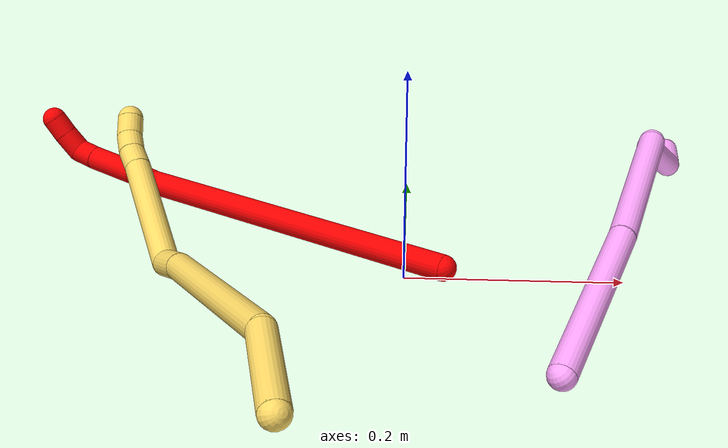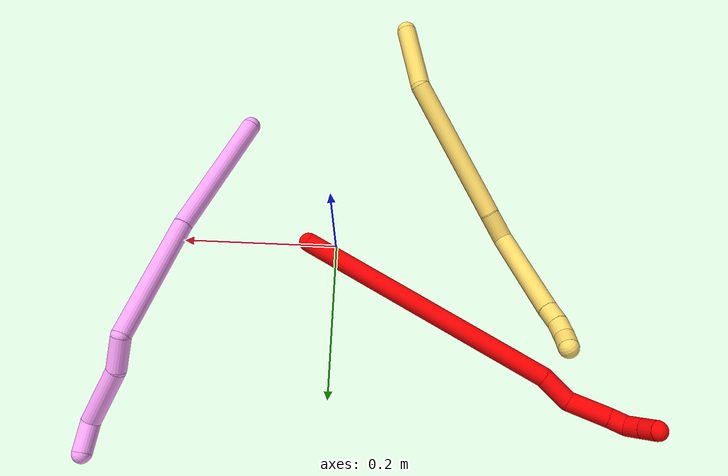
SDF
<sdf version="1.7">
 <world name="default">
  <model name="photoneo_s_sensor">
   <static>1</static>
   <pose>0 0 2 1.57079 1.57079 3.14159</pose>
   <link name="link">
    <inertial><mass>0.1</mass></inertial>
    <sensor name="sensor" type="depth">
     <update_rate>30</update_rate>
     <camera>
      <horizontal_fov>1.22</horizontal_fov>
      <image><width>1920</width><height>1200</height><format>B8G8R8</format></image>
      <clip><near>0.1</near><far>4</far></clip>
      <depth_camera><output>points</output></depth_camera>
     </camera>
     <plugin name="camera_plugin" filename="libgazebo_ros_depth_camera.so">
      <baseline>0.2</baseline>
      <alwaysOn>1</alwaysOn>
      <updateRate>0.0</updateRate>
      <cameraName>camera_ir</cameraName>
      <imageTopicName>/camera/color/image_raw</imageTopicName>
      <cameraInfoTopicName>/camera/color/camera_info</cameraInfoTopicName>
      <depthImageTopicName>/camera/depth/image_raw</depthImageTopicName>
      <depthImageCameraInfoTopicName>/camera/depth/camera_info</depthImageCameraInfoTopicName>
      <pointCloudTopicName>/camera/depth/points</pointCloudTopicName>
      <frameName>fr_optical</frameName>
      <pointCloudCutoff>0.1</pointCloudCutoff>
      <pointCloudCutoffMax>2.0</pointCloudCutoffMax>
      <distortionK1>0</distortionK1>
      <distortionK2>0</distortionK2>
      <distortionK3>0</distortionK3>
      <distortionT1>0</distortionT1>
      <distortionT2>0</distortionT2>
      <CxPrime>0</CxPrime>
      <Cx>0</Cx>
      <Cy>0</Cy>
      <focalLength>0</focalLength>
      <hackBaseline>0</hackBaseline>
     </plugin>
    </sensor>
   </link>
  </model>
  <model name="bin">
   <static>1</static>
   <link name="bottom">
    <collision name="collision-bottom">
     <pose>0 0 -0.01 0 -0 0</pose>
     <geometry><box><size>0.8 0.6 0.02</size></box></geometry>
     <surface>
      <friction><ode><mu>100</mu><mu2>100</mu2></ode></friction>
      <contact><collide_bitmask>65535</collide_bitmask></contact>
     </surface>
    </collision>
   </link>
   <link name="west_wall">
    <collision name="collision-west_wall">
     <pose>-0.41 0 0.1 0 -0 0</pose>
     <geometry><box><size>0.02 0.6 0.2</size></box></geometry>
     <surface>
      <friction><ode><mu>100</mu><mu2>100</mu2></ode></friction>
      <contact><collide_bitmask>65535</collide_bitmask></contact>
     </surface>
    </collision>
   </link>
   <link name="east_wall">
    <collision name="collision-east_wall">
     <pose>0.41 0 0.1 0 -0 0</pose>
     <geometry><box><size>0.02 0.6 0.2</size></box></geometry>
     <surface>
      <friction><ode><mu>100</mu><mu2>100</mu2></ode></friction>
      <contact><collide_bitmask>65535</collide_bitmask></contact>
     </surface>
    </collision>
   </link>
   <link name="south_wall">
    <collision name="collision-south_wall">
     <pose>0 -0.31 0.1 0 -0 0</pose>
     <geometry><box><size>0.8 0.02 0.2</size></box></geometry>
     <surface>
      <friction><ode><mu>100</mu><mu2>100</mu2></ode></friction>
      <contact><collide_bitmask>65535</collide_bitmask></contact>
     </surface>
    </collision>
   </link>
   <link name="north_wall">
    <collision name="collision-north_wall">
     <pose>0 0.31 0.1 0 -0 0</pose>
     <geometry><box><size>0.8 0.02 0.2</size></box></geometry>
     <surface>
      <friction><ode><mu>100</mu><mu2>100</mu2></ode></friction>
      <contact><collide_bitmask>65535</collide_bitmask></contact>
     </surface>
    </collision>
   </link>
  </model>
  <model name="2">
   <static>0</static>
   <link name="2">
    <collision name="collision-cylinder-e_1_1_4">
     <pose>-0.08825 0.030583 0.14419 -0.209003 -0.539477 0.057979</pose>
     <geometry><cylinder><radius>0.0125</radius><length>0.343594</length></cylinder></geometry>
     <surface>
      <friction><ode><mu>1.16</mu><mu2>1.16</mu2><slip1>0</slip1><slip2>0</slip2></ode></friction>
      <contact><ode><kp>1e+06</kp><kd>1</kd><max_vel>0</max_vel><min_depth>0.001</min_depth></ode></contact>
     </surface>
    </collision>
    <visual name="visual-cylinder-e_1_1_4">
     <pose>-0.08825 0.030583 0.14419 -0.209003 -0.539477 0.057979</pose>
     <geometry><cylinder><radius>0.0125</radius><length>0.343594</length></cylinder></geometry>
     <material><ambient>1 0 0 1</ambient></material>
    </visual>
    <collision name="collision-cylinder-e_2_4_5">
     <pose>-0.189806 0.060665 0.30329 0.033537 -0.728331 -0.012784</pose>
     <geometry><cylinder><radius>0.0125</radius><length>0.03998</length></cylinder></geometry>
     <surface>
      <friction><ode><mu>1.16</mu><mu2>1.16</mu2><slip1>0</slip1><slip2>0</slip2></ode></friction>
      <contact><ode><kp>1e+06</kp><kd>1</kd><max_vel>0</max_vel><min_depth>0.001</min_depth></ode></contact>
     </surface>
    </collision>
    <visual name="visual-cylinder-e_2_4_5">
     <pose>-0.189806 0.060665 0.30329 0.033537 -0.728331 -0.012784</pose>
     <geometry><cylinder><radius>0.0125</radius><length>0.03998</length></cylinder></geometry>
     <material><ambient>1 0 0 1</ambient></material>
    </visual>
    <collision name="collision-cylinder-e_3_5_6">
     <pose>-0.215678 0.069676 0.338665 -0.435058 -0.508084 0.114654</pose>
     <geometry><cylinder><radius>0.0125</radius><length>0.05166</length></cylinder></geometry>
     <surface>
      <friction><ode><mu>1.16</mu><mu2>1.16</mu2><slip1>0</slip1><slip2>0</slip2></ode></friction>
      <contact><ode><kp>1e+06</kp><kd>1</kd><max_vel>0</max_vel><min_depth>0.001</min_depth></ode></contact>
     </surface>
    </collision>
    <visual name="visual-cylinder-e_3_5_6">
     <pose>-0.215678 0.069676 0.338665 -0.435058 -0.508084 0.114654</pose>
     <geometry><cylinder><radius>0.0125</radius><length>0.05166</length></cylinder></geometry>
     <material><ambient>1 0 0 1</ambient></material>
    </visual>
    <collision name="collision-cylinder-e_4_6_7">
     <pose>-0.234068 0.083113 0.367205 -0.452452 -0.575383 0.136002</pose>
     <geometry><cylinder><radius>0.0125</radius><length>0.021404</length></cylinder></geometry>
     <surface>
      <friction><ode><mu>1.16</mu><mu2>1.16</mu2><slip1>0</slip1><slip2>0</slip2></ode></friction>
      <contact><ode><kp>1e+06</kp><kd>1</kd><max_vel>0</max_vel><min_depth>0.001</min_depth></ode></contact>
     </surface>
    </collision>
    <visual name="visual-cylinder-e_4_6_7">
     <pose>-0.234068 0.083113 0.367205 -0.452452 -0.575383 0.136002</pose>
     <geometry><cylinder><radius>0.0125</radius><length>0.021404</length></cylinder></geometry>
     <material><ambient>1 0 0 1</ambient></material>
    </visual>
    <collision name="collision-cylinder-e_5_7_8">
     <pose>-0.245954 0.09633 0.378395 -1.24731 -0.554013 0.40353</pose>
     <geometry><cylinder><radius>0.0125</radius><length>0.023048</length></cylinder></geometry>
     <surface>
      <friction><ode><mu>1.16</mu><mu2>1.16</mu2><slip1>0</slip1><slip2>0</slip2></ode></friction>
      <contact><ode><kp>1e+06</kp><kd>1</kd><max_vel>0</max_vel><min_depth>0.001</min_depth></ode></contact>
     </surface>
    </collision>
    <visual name="visual-cylinder-e_5_7_8">
     <pose>-0.245954 0.09633 0.378395 -1.24731 -0.554013 0.40353</pose>
     <geometry><cylinder><radius>0.0125</radius><length>0.023048</length></cylinder></geometry>
     <material><ambient>1 0 0 1</ambient></material>
    </visual>
    <collision name="collision-cylinder-e_6_8_2">
     <pose>-0.257466 0.113974 0.383437 -1.34416 -0.566284 0.454985</pose>
     <geometry><cylinder><radius>0.0125</radius><length>0.020315</length></cylinder></geometry>
     <surface>
      <friction><ode><mu>1.16</mu><mu2>1.16</mu2><slip1>0</slip1><slip2>0</slip2></ode></friction>
      <contact><ode><kp>1e+06</kp><kd>1</kd><max_vel>0</max_vel><min_depth>0.001</min_depth></ode></contact>
     </surface>
    </collision>
    <visual name="visual-cylinder-e_6_8_2">
     <pose>-0.257466 0.113974 0.383437 -1.34416 -0.566284 0.454985</pose>
     <geometry><cylinder><radius>0.0125</radius><length>0.020315</length></cylinder></geometry>
     <material><ambient>1 0 0 1</ambient></material>
    </visual>
    <collision name="collision-sphere-2">
     <pose>-0.262916 0.122327 0.385363 0 -0 0</pose>
     <geometry><sphere><radius>0.0125</radius></sphere></geometry>
     <surface>
      <friction><ode><mu>1.16</mu><mu2>1.16</mu2><slip1>0</slip1><slip2>0</slip2></ode></friction>
      <contact><ode><kp>1e+06</kp><kd>1</kd><max_vel>0</max_vel><min_depth>0.001</min_depth></ode></contact>
     </surface>
    </collision>
    <visual name="visual-sphere-2">
     <pose>-0.262916 0.122327 0.385363 0 -0 0</pose>
     <geometry><sphere><radius>0.0125</radius></sphere></geometry>
     <material><ambient>1 0 0 1</ambient></material>
    </visual>
    <collision name="collision-sphere-4">
     <pose>-0.1765 0.061166 0.28838 0 -0 0</pose>
     <geometry><sphere><radius>0.0125</radius></sphere></geometry>
     <surface>
      <friction><ode><mu>1.16</mu><mu2>1.16</mu2><slip1>0</slip1><slip2>0</slip2></ode></friction>
      <contact><ode><kp>1e+06</kp><kd>1</kd><max_vel>0</max_vel><min_depth>0.001</min_depth></ode></contact>
     </surface>
    </collision>
    <visual name="visual-sphere-4">
     <pose>-0.1765 0.061166 0.28838 0 -0 0</pose>
     <geometry><sphere><radius>0.0125</radius></sphere></geometry>
     <material><ambient>1 0 0 1</ambient></material>
    </visual>
    <collision name="collision-sphere-1">
     <geometry><sphere><radius>0.0125</radius></sphere></geometry>
     <surface>
      <friction><ode><mu>1.16</mu><mu2>1.16</mu2><slip1>0</slip1><slip2>0</slip2></ode></friction>
      <contact><ode><kp>1e+06</kp><kd>1</kd><max_vel>0</max_vel><min_depth>0.001</min_depth></ode></contact>
     </surface>
    </collision>
    <visual name="visual-sphere-1">
     <geometry><sphere><radius>0.0125</radius></sphere></geometry>
     <material><ambient>1 0 0 1</ambient></material>
    </visual>
    <collision name="collision-sphere-8">
     <pose>-0.252017 0.105622 0.381511 0 -0 0</pose>
     <geometry><sphere><radius>0.0125</radius></sphere></geometry>
     <surface>
      <friction><ode><mu>1.16</mu><mu2>1.16</mu2><slip1>0</slip1><slip2>0</slip2></ode></friction>
      <contact><ode><kp>1e+06</kp><kd>1</kd><max_vel>0</max_vel><min_depth>0.001</min_depth></ode></contact>
     </surface>
    </collision>
    <visual name="visual-sphere-8">
     <pose>-0.252017 0.105622 0.381511 0 -0 0</pose>
     <geometry><sphere><radius>0.0125</radius></sphere></geometry>
     <material><ambient>1 0 0 1</ambient></material>
    </visual>
    <collision name="collision-sphere-5">
     <pose>-0.203111 0.060165 0.3182 0 -0 0</pose>
     <geometry><sphere><radius>0.0125</radius></sphere></geometry>
     <surface>
      <friction><ode><mu>1.16</mu><mu2>1.16</mu2><slip1>0</slip1><slip2>0</slip2></ode></friction>
      <contact><ode><kp>1e+06</kp><kd>1</kd><max_vel>0</max_vel><min_depth>0.001</min_depth></ode></contact>
     </surface>
    </collision>
    <visual name="visual-sphere-5">
     <pose>-0.203111 0.060165 0.3182 0 -0 0</pose>
     <geometry><sphere><radius>0.0125</radius></sphere></geometry>
     <material><ambient>1 0 0 1</ambient></material>
    </visual>
    <collision name="collision-sphere-6">
     <pose>-0.228244 0.079187 0.35913 0 -0 0</pose>
     <geometry><sphere><radius>0.0125</radius></sphere></geometry>
     <surface>
      <friction><ode><mu>1.16</mu><mu2>1.16</mu2><slip1>0</slip1><slip2>0</slip2></ode></friction>
      <contact><ode><kp>1e+06</kp><kd>1</kd><max_vel>0</max_vel><min_depth>0.001</min_depth></ode></contact>
     </surface>
    </collision>
    <visual name="visual-sphere-6">
     <pose>-0.228244 0.079187 0.35913 0 -0 0</pose>
     <geometry><sphere><radius>0.0125</radius></sphere></geometry>
     <material><ambient>1 0 0 1</ambient></material>
    </visual>
    <collision name="collision-sphere-7">
     <pose>-0.239891 0.087038 0.37528 0 -0 0</pose>
     <geometry><sphere><radius>0.0125</radius></sphere></geometry>
     <surface>
      <friction><ode><mu>1.16</mu><mu2>1.16</mu2><slip1>0</slip1><slip2>0</slip2></ode></friction>
      <contact><ode><kp>1e+06</kp><kd>1</kd><max_vel>0</max_vel><min_depth>0.001</min_depth></ode></contact>
     </surface>
    </collision>
    <visual name="visual-sphere-7">
     <pose>-0.239891 0.087038 0.37528 0 -0 0</pose>
     <geometry><sphere><radius>0.0125</radius></sphere></geometry>
     <material><ambient>1 0 0 1</ambient></material>
    </visual>
    <inertial>
     <pose>-0.129923 0.045695 0.207068 0 -0 0</pose>
     <mass>0.5</mass>
     <inertia>
      <ixx>0.003079</ixx>
      <ixy>0</ixy>
      <ixz>0</ixz>
      <iyy>0.003539</iyy>
      <iyz>0</iyz>
      <izz>0.001175</izz>
     </inertia>
    </inertial>
   </link>
   <pose>0.0356 -0.000872 0.011695 2.04548 0.424688 -1.46886</pose>
  </model>
  <model name="4">
   <static>0</static>
   <link name="4">
    <collision name="collision-cylinder-e_1_1_4">
     <pose>0.005916 0.087738 0.005238 -1.51116 0.06721 -0.063319</pose>
     <geometry><cylinder><radius>0.0125</radius><length>0.176186</length></cylinder></geometry>
     <surface>
      <friction><ode><mu>1.16</mu><mu2>1.16</mu2><slip1>0</slip1><slip2>0</slip2></ode></friction>
      <contact><ode><kp>1e+06</kp><kd>1</kd><max_vel>0</max_vel><min_depth>0.001</min_depth></ode></contact>
     </surface>
    </collision>
    <visual name="visual-cylinder-e_1_1_4">
     <pose>0.005916 0.087738 0.005238 -1.51116 0.06721 -0.063319</pose>
     <geometry><cylinder><radius>0.0125</radius><length>0.176186</length></cylinder></geometry>
     <material><ambient>1 0.65098 0.996078 1</ambient></material>
    </visual>
    <collision name="collision-cylinder-e_2_4_5">
     <pose>0.024514 0.254204 0.01518 -1.51113 0.159434 -0.150229</pose>
     <geometry><cylinder><radius>0.0125</radius><length>0.159763</length></cylinder></geometry>
     <surface>
      <friction><ode><mu>1.16</mu><mu2>1.16</mu2><slip1>0</slip1><slip2>0</slip2></ode></friction>
      <contact><ode><kp>1e+06</kp><kd>1</kd><max_vel>0</max_vel><min_depth>0.001</min_depth></ode></contact>
     </surface>
    </collision>
    <visual name="visual-cylinder-e_2_4_5">
     <pose>0.024514 0.254204 0.01518 -1.51113 0.159434 -0.150229</pose>
     <geometry><cylinder><radius>0.0125</radius><length>0.159763</length></cylinder></geometry>
     <material><ambient>1 0.65098 0.996078 1</ambient></material>
    </visual>
    <collision name="collision-cylinder-e_3_5_6">
     <pose>0.049765 0.347251 0.031425 -0.892405 0.599511 -0.293577</pose>
     <geometry><cylinder><radius>0.0125</radius><length>0.044552</length></cylinder></geometry>
     <surface>
      <friction><ode><mu>1.16</mu><mu2>1.16</mu2><slip1>0</slip1><slip2>0</slip2></ode></friction>
      <contact><ode><kp>1e+06</kp><kd>1</kd><max_vel>0</max_vel><min_depth>0.001</min_depth></ode></contact>
     </surface>
    </collision>
    <visual name="visual-cylinder-e_3_5_6">
     <pose>0.049765 0.347251 0.031425 -0.892405 0.599511 -0.293577</pose>
     <geometry><cylinder><radius>0.0125</radius><length>0.044552</length></cylinder></geometry>
     <material><ambient>1 0.65098 0.996078 1</ambient></material>
    </visual>
    <collision name="collision-cylinder-e_4_6_7">
     <pose>0.074828 0.386544 0.072162 -0.707625 0.314405 -0.11696</pose>
     <geometry><cylinder><radius>0.0125</radius><length>0.0808</length></cylinder></geometry>
     <surface>
      <friction><ode><mu>1.16</mu><mu2>1.16</mu2><slip1>0</slip1><slip2>0</slip2></ode></friction>
      <contact><ode><kp>1e+06</kp><kd>1</kd><max_vel>0</max_vel><min_depth>0.001</min_depth></ode></contact>
     </surface>
    </collision>
    <visual name="visual-cylinder-e_4_6_7">
     <pose>0.074828 0.386544 0.072162 -0.707625 0.314405 -0.11696</pose>
     <geometry><cylinder><radius>0.0125</radius><length>0.0808</length></cylinder></geometry>
     <material><ambient>1 0.65098 0.996078 1</ambient></material>
    </visual>
    <collision name="collision-cylinder-e_5_7_2">
     <pose>0.094824 0.429302 0.10272 -1.4943 0.398153 -0.369493</pose>
     <geometry><cylinder><radius>0.0125</radius><length>0.038699</length></cylinder></geometry>
     <surface>
      <friction><ode><mu>1.16</mu><mu2>1.16</mu2><slip1>0</slip1><slip2>0</slip2></ode></friction>
      <contact><ode><kp>1e+06</kp><kd>1</kd><max_vel>0</max_vel><min_depth>0.001</min_depth></ode></contact>
     </surface>
    </collision>
    <visual name="visual-cylinder-e_5_7_2">
     <pose>0.094824 0.429302 0.10272 -1.4943 0.398153 -0.369493</pose>
     <geometry><cylinder><radius>0.0125</radius><length>0.038699</length></cylinder></geometry>
     <material><ambient>1 0.65098 0.996078 1</ambient></material>
    </visual>
    <collision name="collision-sphere-2">
     <pose>0.102326 0.447086 0.104083 0 -0 0</pose>
     <geometry><sphere><radius>0.0125</radius></sphere></geometry>
     <surface>
      <friction><ode><mu>1.16</mu><mu2>1.16</mu2><slip1>0</slip1><slip2>0</slip2></ode></friction>
      <contact><ode><kp>1e+06</kp><kd>1</kd><max_vel>0</max_vel><min_depth>0.001</min_depth></ode></contact>
     </surface>
    </collision>
    <visual name="visual-sphere-2">
     <pose>0.102326 0.447086 0.104083 0 -0 0</pose>
     <geometry><sphere><radius>0.0125</radius></sphere></geometry>
     <material><ambient>1 0.65098 0.996078 1</ambient></material>
    </visual>
    <collision name="collision-sphere-7">
     <pose>0.087322 0.411518 0.101357 0 -0 0</pose>
     <geometry><sphere><radius>0.0125</radius></sphere></geometry>
     <surface>
      <friction><ode><mu>1.16</mu><mu2>1.16</mu2><slip1>0</slip1><slip2>0</slip2></ode></friction>
      <contact><ode><kp>1e+06</kp><kd>1</kd><max_vel>0</max_vel><min_depth>0.001</min_depth></ode></contact>
     </surface>
    </collision>
    <visual name="visual-sphere-7">
     <pose>0.087322 0.411518 0.101357 0 -0 0</pose>
     <geometry><sphere><radius>0.0125</radius></sphere></geometry>
     <material><ambient>1 0.65098 0.996078 1</ambient></material>
    </visual>
    <collision name="collision-sphere-6">
     <pose>0.062334 0.36157 0.042966 0 -0 0</pose>
     <geometry><sphere><radius>0.0125</radius></sphere></geometry>
     <surface>
      <friction><ode><mu>1.16</mu><mu2>1.16</mu2><slip1>0</slip1><slip2>0</slip2></ode></friction>
      <contact><ode><kp>1e+06</kp><kd>1</kd><max_vel>0</max_vel><min_depth>0.001</min_depth></ode></contact>
     </surface>
    </collision>
    <visual name="visual-sphere-6">
     <pose>0.062334 0.36157 0.042966 0 -0 0</pose>
     <geometry><sphere><radius>0.0125</radius></sphere></geometry>
     <material><ambient>1 0.65098 0.996078 1</ambient></material>
    </visual>
    <collision name="collision-sphere-5">
     <pose>0.037196 0.332932 0.019884 0 -0 0</pose>
     <geometry><sphere><radius>0.0125</radius></sphere></geometry>
     <surface>
      <friction><ode><mu>1.16</mu><mu2>1.16</mu2><slip1>0</slip1><slip2>0</slip2></ode></friction>
      <contact><ode><kp>1e+06</kp><kd>1</kd><max_vel>0</max_vel><min_depth>0.001</min_depth></ode></contact>
     </surface>
    </collision>
    <visual name="visual-sphere-5">
     <pose>0.037196 0.332932 0.019884 0 -0 0</pose>
     <geometry><sphere><radius>0.0125</radius></sphere></geometry>
     <material><ambient>1 0.65098 0.996078 1</ambient></material>
    </visual>
    <collision name="collision-sphere-1">
     <geometry><sphere><radius>0.0125</radius></sphere></geometry>
     <surface>
      <friction><ode><mu>1.16</mu><mu2>1.16</mu2><slip1>0</slip1><slip2>0</slip2></ode></friction>
      <contact><ode><kp>1e+06</kp><kd>1</kd><max_vel>0</max_vel><min_depth>0.001</min_depth></ode></contact>
     </surface>
    </collision>
    <visual name="visual-sphere-1">
     <geometry><sphere><radius>0.0125</radius></sphere></geometry>
     <material><ambient>1 0.65098 0.996078 1</ambient></material>
    </visual>
    <collision name="collision-sphere-4">
     <pose>0.011833 0.175476 0.010477 0 -0 0</pose>
     <geometry><sphere><radius>0.0125</radius></sphere></geometry>
     <surface>
      <friction><ode><mu>1.16</mu><mu2>1.16</mu2><slip1>0</slip1><slip2>0</slip2></ode></friction>
      <contact><ode><kp>1e+06</kp><kd>1</kd><max_vel>0</max_vel><min_depth>0.001</min_depth></ode></contact>
     </surface>
    </collision>
    <visual name="visual-sphere-4">
     <pose>0.011833 0.175476 0.010477 0 -0 0</pose>
     <geometry><sphere><radius>0.0125</radius></sphere></geometry>
     <material><ambient>1 0.65098 0.996078 1</ambient></material>
    </visual>
    <inertial>
     <pose>0.033783 0.238775 0.029108 0 -0 0</pose>
     <mass>0.5</mass>
     <inertia>
      <ixx>0.000774</ixx>
      <ixy>0</ixy>
      <ixz>0</ixz>
      <iyy>4.8e-05</iyy>
      <iyz>0</iyz>
      <izz>-0.000943</izz>
     </inertia>
    </inertial>
   </link>
   <pose>0.125222 -0.162839 0.011498 2.78295 0.511885 2.52555</pose>
  </model>
  <model name="5">
   <static>0</static>
   <link name="5">
    <collision name="collision-cylinder-e_1_1_4">
     <pose>-0.027795 0.013707 -0.031647 -2.73286 -0.678357 2.07931</pose>
     <geometry><cylinder><radius>0.0125</radius><length>0.088588</length></cylinder></geometry>
     <surface>
      <friction><ode><mu>1.16</mu><mu2>1.16</mu2><slip1>0</slip1><slip2>0</slip2></ode></friction>
      <contact><ode><kp>1e+06</kp><kd>1</kd><max_vel>0</max_vel><min_depth>0.001</min_depth></ode></contact>
     </surface>
    </collision>
    <visual name="visual-cylinder-e_1_1_4">
     <pose>-0.027795 0.013707 -0.031647 -2.73286 -0.678357 2.07931</pose>
     <geometry><cylinder><radius>0.0125</radius><length>0.088588</length></cylinder></geometry>
     <material><ambient>1 0.858824 0.4 1</ambient></material>
    </visual>
    <collision name="collision-cylinder-e_2_4_5">
     <pose>-0.087737 0.033867 -0.152238 -3.06917 -0.345978 2.73273</pose>
     <geometry><cylinder><radius>0.0125</radius><length>0.189591</length></cylinder></geometry>
     <surface>
      <friction><ode><mu>1.16</mu><mu2>1.16</mu2><slip1>0</slip1><slip2>0</slip2></ode></friction>
      <contact><ode><kp>1e+06</kp><kd>1</kd><max_vel>0</max_vel><min_depth>0.001</min_depth></ode></contact>
     </surface>
    </collision>
    <visual name="visual-cylinder-e_2_4_5">
     <pose>-0.087737 0.033867 -0.152238 -3.06917 -0.345978 2.73273</pose>
     <geometry><cylinder><radius>0.0125</radius><length>0.189591</length></cylinder></geometry>
     <material><ambient>1 0.858824 0.4 1</ambient></material>
    </visual>
    <collision name="collision-cylinder-e_3_5_6">
     <pose>-0.123669 0.041332 -0.259543 -3.08651 -0.203022 2.61337</pose>
     <geometry><cylinder><radius>0.0125</radius><length>0.037549</length></cylinder></geometry>
     <surface>
      <friction><ode><mu>1.16</mu><mu2>1.16</mu2><slip1>0</slip1><slip2>0</slip2></ode></friction>
      <contact><ode><kp>1e+06</kp><kd>1</kd><max_vel>0</max_vel><min_depth>0.001</min_depth></ode></contact>
     </surface>
    </collision>
    <visual name="visual-cylinder-e_3_5_6">
     <pose>-0.123669 0.041332 -0.259543 -3.08651 -0.203022 2.61337</pose>
     <geometry><cylinder><radius>0.0125</radius><length>0.037549</length></cylinder></geometry>
     <material><ambient>1 0.858824 0.4 1</ambient></material>
    </visual>
    <collision name="collision-cylinder-e_4_6_7">
     <pose>-0.177863 0.045929 -0.311418 -3.03506 -0.981422 2.94267</pose>
     <geometry><cylinder><radius>0.0125</radius><length>0.121276</length></cylinder></geometry>
     <surface>
      <friction><ode><mu>1.16</mu><mu2>1.16</mu2><slip1>0</slip1><slip2>0</slip2></ode></friction>
      <contact><ode><kp>1e+06</kp><kd>1</kd><max_vel>0</max_vel><min_depth>0.001</min_depth></ode></contact>
     </surface>
    </collision>
    <visual name="visual-cylinder-e_4_6_7">
     <pose>-0.177863 0.045929 -0.311418 -3.03506 -0.981422 2.94267</pose>
     <geometry><cylinder><radius>0.0125</radius><length>0.121276</length></cylinder></geometry>
     <material><ambient>1 0.858824 0.4 1</ambient></material>
    </visual>
    <collision name="collision-cylinder-e_5_7_8">
     <pose>-0.237129 0.049505 -0.35107 3.14029 -0.96488 -3.13911</pose>
     <geometry><cylinder><radius>0.0125</radius><length>0.021554</length></cylinder></geometry>
     <surface>
      <friction><ode><mu>1.16</mu><mu2>1.16</mu2><slip1>0</slip1><slip2>0</slip2></ode></friction>
      <contact><ode><kp>1e+06</kp><kd>1</kd><max_vel>0</max_vel><min_depth>0.001</min_depth></ode></contact>
     </surface>
    </collision>
    <visual name="visual-cylinder-e_5_7_8">
     <pose>-0.237129 0.049505 -0.35107 3.14029 -0.96488 -3.13911</pose>
     <geometry><cylinder><radius>0.0125</radius><length>0.021554</length></cylinder></geometry>
     <material><ambient>1 0.858824 0.4 1</ambient></material>
    </visual>
    <collision name="collision-cylinder-e_6_8_9">
     <pose>-0.254743 0.051068 -0.362388 -2.84697 -1.01709 2.62127</pose>
     <geometry><cylinder><radius>0.0125</radius><length>0.020587</length></cylinder></geometry>
     <surface>
      <friction><ode><mu>1.16</mu><mu2>1.16</mu2><slip1>0</slip1><slip2>0</slip2></ode></friction>
      <contact><ode><kp>1e+06</kp><kd>1</kd><max_vel>0</max_vel><min_depth>0.001</min_depth></ode></contact>
     </surface>
    </collision>
    <visual name="visual-cylinder-e_6_8_9">
     <pose>-0.254743 0.051068 -0.362388 -2.84697 -1.01709 2.62127</pose>
     <geometry><cylinder><radius>0.0125</radius><length>0.020587</length></cylinder></geometry>
     <material><ambient>1 0.858824 0.4 1</ambient></material>
    </visual>
    <collision name="collision-cylinder-e_7_9_2">
     <pose>-0.273466 0.054875 -0.369663 -2.3242 -1.27256 2.08114</pose>
     <geometry><cylinder><radius>0.0125</radius><length>0.020854</length></cylinder></geometry>
     <surface>
      <friction><ode><mu>1.16</mu><mu2>1.16</mu2><slip1>0</slip1><slip2>0</slip2></ode></friction>
      <contact><ode><kp>1e+06</kp><kd>1</kd><max_vel>0</max_vel><min_depth>0.001</min_depth></ode></contact>
     </surface>
    </collision>
    <visual name="visual-cylinder-e_7_9_2">
     <pose>-0.273466 0.054875 -0.369663 -2.3242 -1.27256 2.08114</pose>
     <geometry><cylinder><radius>0.0125</radius><length>0.020854</length></cylinder></geometry>
     <material><ambient>1 0.858824 0.4 1</ambient></material>
    </visual>
    <collision name="collision-sphere-2">
     <pose>-0.283432 0.05711 -0.371759 0 -0 0</pose>
     <geometry><sphere><radius>0.0125</radius></sphere></geometry>
     <surface>
      <friction><ode><mu>1.16</mu><mu2>1.16</mu2><slip1>0</slip1><slip2>0</slip2></ode></friction>
      <contact><ode><kp>1e+06</kp><kd>1</kd><max_vel>0</max_vel><min_depth>0.001</min_depth></ode></contact>
     </surface>
    </collision>
    <visual name="visual-sphere-2">
     <pose>-0.283432 0.05711 -0.371759 0 -0 0</pose>
     <geometry><sphere><radius>0.0125</radius></sphere></geometry>
     <material><ambient>1 0.858824 0.4 1</ambient></material>
    </visual>
    <collision name="collision-sphere-9">
     <pose>-0.263499 0.05264 -0.367567 0 -0 0</pose>
     <geometry><sphere><radius>0.0125</radius></sphere></geometry>
     <surface>
      <friction><ode><mu>1.16</mu><mu2>1.16</mu2><slip1>0</slip1><slip2>0</slip2></ode></friction>
      <contact><ode><kp>1e+06</kp><kd>1</kd><max_vel>0</max_vel><min_depth>0.001</min_depth></ode></contact>
     </surface>
    </collision>
    <visual name="visual-sphere-9">
     <pose>-0.263499 0.05264 -0.367567 0 -0 0</pose>
     <geometry><sphere><radius>0.0125</radius></sphere></geometry>
     <material><ambient>1 0.858824 0.4 1</ambient></material>
    </visual>
    <collision name="collision-sphere-4">
     <pose>-0.05559 0.027414 -0.063293 0 -0 0</pose>
     <geometry><sphere><radius>0.0125</radius></sphere></geometry>
     <surface>
      <friction><ode><mu>1.16</mu><mu2>1.16</mu2><slip1>0</slip1><slip2>0</slip2></ode></friction>
      <contact><ode><kp>1e+06</kp><kd>1</kd><max_vel>0</max_vel><min_depth>0.001</min_depth></ode></contact>
     </surface>
    </collision>
    <visual name="visual-sphere-4">
     <pose>-0.05559 0.027414 -0.063293 0 -0 0</pose>
     <geometry><sphere><radius>0.0125</radius></sphere></geometry>
     <material><ambient>1 0.858824 0.4 1</ambient></material>
    </visual>
    <collision name="collision-sphere-1">
     <geometry><sphere><radius>0.0125</radius></sphere></geometry>
     <surface>
      <friction><ode><mu>1.16</mu><mu2>1.16</mu2><slip1>0</slip1><slip2>0</slip2></ode></friction>
      <contact><ode><kp>1e+06</kp><kd>1</kd><max_vel>0</max_vel><min_depth>0.001</min_depth></ode></contact>
     </surface>
    </collision>
    <visual name="visual-sphere-1">
     <geometry><sphere><radius>0.0125</radius></sphere></geometry>
     <material><ambient>1 0.858824 0.4 1</ambient></material>
    </visual>
    <collision name="collision-sphere-8">
     <pose>-0.245988 0.049497 -0.357208 0 -0 0</pose>
     <geometry><sphere><radius>0.0125</radius></sphere></geometry>
     <surface>
      <friction><ode><mu>1.16</mu><mu2>1.16</mu2><slip1>0</slip1><slip2>0</slip2></ode></friction>
      <contact><ode><kp>1e+06</kp><kd>1</kd><max_vel>0</max_vel><min_depth>0.001</min_depth></ode></contact>
     </surface>
    </collision>
    <visual name="visual-sphere-8">
     <pose>-0.245988 0.049497 -0.357208 0 -0 0</pose>
     <geometry><sphere><radius>0.0125</radius></sphere></geometry>
     <material><ambient>1 0.858824 0.4 1</ambient></material>
    </visual>
    <collision name="collision-sphere-5">
     <pose>-0.119884 0.04032 -0.241182 0 -0 0</pose>
     <geometry><sphere><radius>0.0125</radius></sphere></geometry>
     <surface>
      <friction><ode><mu>1.16</mu><mu2>1.16</mu2><slip1>0</slip1><slip2>0</slip2></ode></friction>
      <contact><ode><kp>1e+06</kp><kd>1</kd><max_vel>0</max_vel><min_depth>0.001</min_depth></ode></contact>
     </surface>
    </collision>
    <visual name="visual-sphere-5">
     <pose>-0.119884 0.04032 -0.241182 0 -0 0</pose>
     <geometry><sphere><radius>0.0125</radius></sphere></geometry>
     <material><ambient>1 0.858824 0.4 1</ambient></material>
    </visual>
    <collision name="collision-sphere-6">
     <pose>-0.127455 0.042345 -0.277904 0 -0 0</pose>
     <geometry><sphere><radius>0.0125</radius></sphere></geometry>
     <surface>
      <friction><ode><mu>1.16</mu><mu2>1.16</mu2><slip1>0</slip1><slip2>0</slip2></ode></friction>
      <contact><ode><kp>1e+06</kp><kd>1</kd><max_vel>0</max_vel><min_depth>0.001</min_depth></ode></contact>
     </surface>
    </collision>
    <visual name="visual-sphere-6">
     <pose>-0.127455 0.042345 -0.277904 0 -0 0</pose>
     <geometry><sphere><radius>0.0125</radius></sphere></geometry>
     <material><ambient>1 0.858824 0.4 1</ambient></material>
    </visual>
    <collision name="collision-sphere-7">
     <pose>-0.22827 0.049513 -0.344932 0 -0 0</pose>
     <geometry><sphere><radius>0.0125</radius></sphere></geometry>
     <surface>
      <friction><ode><mu>1.16</mu><mu2>1.16</mu2><slip1>0</slip1><slip2>0</slip2></ode></friction>
      <contact><ode><kp>1e+06</kp><kd>1</kd><max_vel>0</max_vel><min_depth>0.001</min_depth></ode></contact>
     </surface>
    </collision>
    <visual name="visual-sphere-7">
     <pose>-0.22827 0.049513 -0.344932 0 -0 0</pose>
     <geometry><sphere><radius>0.0125</radius></sphere></geometry>
     <material><ambient>1 0.858824 0.4 1</ambient></material>
    </visual>
    <inertial>
     <pose>-0.122738 0.03604 -0.203833 0 -0 0</pose>
     <mass>0.5</mass>
     <inertia>
      <ixx>-0.000355</ixx>
      <ixy>0</ixy>
      <ixz>0</ixz>
      <iyy>0.001017</iyy>
      <iyz>0</iyz>
      <izz>0.000269</izz>
     </inertia>
    </inertial>
   </link>
   <pose>-0.081503 -0.287932 0.064173 -0.347471 0.984975 -1.29303</pose>
  </model>
 </world>
</sdf>
